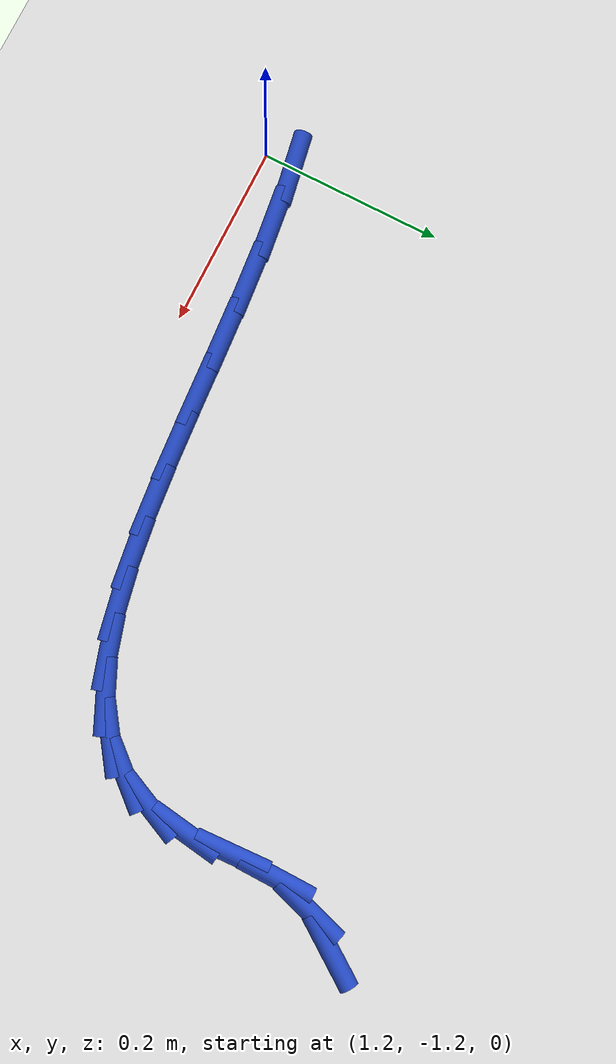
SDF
<sdf version="1.6">
 <world name="default">
  <model name="ground_plane">
   <static>1</static>
   <link name="link">
    <collision name="collision">
     <geometry><plane><normal>0 0 1</normal><size>100 100</size></plane></geometry>
     <surface><friction><ode><mu>100</mu><mu2>50</mu2></ode></friction></surface>
    </collision>
    <visual name="visual">
     <cast_shadows>0</cast_shadows>
     <geometry><plane><normal>0 0 1</normal><size>100 100</size></plane></geometry>
     <material>
      <script><uri>file://media/materials/scripts/gazebo.material</uri><name>Gazebo/WhiteGlow</name></script>
     </material>
    </visual>
   </link>
  </model>
  <model name="line">
   <link name="link_94">
    <pose>1.9036524916503461 -0.7708040634118536 0.01 0 1.57 0.959398151081952</pose>
    <collision name="collision">
     <geometry><cylinder><radius>0.01</radius><length>0.08</length></cylinder></geometry>
    </collision>
    <visual name="visual">
     <material>
      <script><name>Gazebo/Blue</name><uri>file://media/materials/scripts/gazebo.material</uri></script>
     </material>
     <geometry><cylinder><radius>0.01</radius><length>0.08</length></cylinder></geometry>
    </visual>
   </link>
   <link name="link_95">
    <pose>1.8783729610865643 -0.8068660549098605 0.01 0 1.57 1.2677172473980027</pose>
    <collision name="collision">
     <geometry><cylinder><radius>0.01</radius><length>0.08</length></cylinder></geometry>
    </collision>
    <visual name="visual">
     <material>
      <script><name>Gazebo/Blue</name><uri>file://media/materials/scripts/gazebo.material</uri></script>
     </material>
     <geometry><cylinder><radius>0.01</radius><length>0.08</length></cylinder></geometry>
    </visual>
   </link>
   <link name="link_96">
    <pose>1.8650022565015856 -0.8496231403719858 0.01 0 1.57 1.5566040474890273</pose>
    <collision name="collision">
     <geometry><cylinder><radius>0.01</radius><length>0.08</length></cylinder></geometry>
    </collision>
    <visual name="visual">
     <material>
      <script><name>Gazebo/Blue</name><uri>file://media/materials/scripts/gazebo.material</uri></script>
     </material>
     <geometry><cylinder><radius>0.01</radius><length>0.08</length></cylinder></geometry>
    </visual>
   </link>
   <link name="link_97">
    <pose>1.8642933805228328 -0.8995677876493414 0.01 0 1.57 -1.5256831411513931</pose>
    <collision name="collision">
     <geometry><cylinder><radius>0.01</radius><length>0.08</length></cylinder></geometry>
    </collision>
    <visual name="visual">
     <material>
      <script><name>Gazebo/Blue</name><uri>file://media/materials/scripts/gazebo.material</uri></script>
     </material>
     <geometry><cylinder><radius>0.01</radius><length>0.08</length></cylinder></geometry>
    </visual>
   </link>
   <link name="link_98">
    <pose>1.8665848136001235 -0.9503263037203932 0.01 0 1.57 1.4243070970409963</pose>
    <collision name="collision">
     <geometry><cylinder><radius>0.01</radius><length>0.08</length></cylinder></geometry>
    </collision>
    <visual name="visual">
     <material>
      <script><name>Gazebo/Blue</name><uri>file://media/materials/scripts/gazebo.material</uri></script>
     </material>
     <geometry><cylinder><radius>0.01</radius><length>0.08</length></cylinder></geometry>
    </visual>
   </link>
   <link name="link_99">
    <pose>1.860114745815533 -0.9941774513572158 0.01 0 1.57 1.1431936047824425</pose>
    <collision name="collision">
     <geometry><cylinder><radius>0.01</radius><length>0.08</length></cylinder></geometry>
    </collision>
    <visual name="visual">
     <material>
      <script><name>Gazebo/Blue</name><uri>file://media/materials/scripts/gazebo.material</uri></script>
     </material>
     <geometry><cylinder><radius>0.01</radius><length>0.08</length></cylinder></geometry>
    </visual>
   </link>
   <link name="link_100">
    <pose>1.843593440874991 -1.0304304292501316 0.01 0 1.57 0.8548396531226861</pose>
    <collision name="collision">
     <geometry><cylinder><radius>0.01</radius><length>0.08</length></cylinder></geometry>
    </collision>
    <visual name="visual">
     <material>
      <script><name>Gazebo/Blue</name><uri>file://media/materials/scripts/gazebo.material</uri></script>
     </material>
     <geometry><cylinder><radius>0.01</radius><length>0.08</length></cylinder></geometry>
    </visual>
   </link>
   <link name="link_101">
    <pose>1.8179630386869587 -1.0598927107054599 0.01 0 1.57 0.607160705408578</pose>
    <collision name="collision">
     <geometry><cylinder><radius>0.01</radius><length>0.08</length></cylinder></geometry>
    </collision>
    <visual name="visual">
     <material>
      <script><name>Gazebo/Blue</name><uri>file://media/materials/scripts/gazebo.material</uri></script>
     </material>
     <geometry><cylinder><radius>0.01</radius><length>0.08</length></cylinder></geometry>
    </visual>
   </link>
   <link name="link_102">
    <pose>1.7841656791598959 -1.0833717690295224 0.01 0 1.57 0.41967335676441436</pose>
    <collision name="collision">
     <geometry><cylinder><radius>0.01</radius><length>0.08</length></cylinder></geometry>
    </collision>
    <visual name="visual">
     <material>
      <script><name>Gazebo/Blue</name><uri>file://media/materials/scripts/gazebo.material</uri></script>
     </material>
     <geometry><cylinder><radius>0.01</radius><length>0.08</length></cylinder></geometry>
    </visual>
   </link>
   <link name="link_103">
    <pose>1.7431435022022643 -1.1016750775286386 0.01 0 1.57 0.28647630637574495</pose>
    <collision name="collision">
     <geometry><cylinder><radius>0.01</radius><length>0.08</length></cylinder></geometry>
    </collision>
    <visual name="visual">
     <material>
      <script><name>Gazebo/Blue</name><uri>file://media/materials/scripts/gazebo.material</uri></script>
     </material>
     <geometry><cylinder><radius>0.01</radius><length>0.08</length></cylinder></geometry>
    </visual>
   </link>
   <link name="link_104">
    <pose>1.6958386477225253 -1.1156101095091289 0.01 0 1.57 0.19456572497998023</pose>
    <collision name="collision">
     <geometry><cylinder><radius>0.01</radius><length>0.08</length></cylinder></geometry>
    </collision>
    <visual name="visual">
     <material>
      <script><name>Gazebo/Blue</name><uri>file://media/materials/scripts/gazebo.material</uri></script>
     </material>
     <geometry><cylinder><radius>0.01</radius><length>0.08</length></cylinder></geometry>
    </visual>
   </link>
   <link name="link_105">
    <pose>1.643193255629138 -1.1259843382773138 0.01 0 1.57 0.132810923366068</pose>
    <collision name="collision">
     <geometry><cylinder><radius>0.01</radius><length>0.08</length></cylinder></geometry>
    </collision>
    <visual name="visual">
     <material>
      <script><name>Gazebo/Blue</name><uri>file://media/materials/scripts/gazebo.material</uri></script>
     </material>
     <geometry><cylinder><radius>0.01</radius><length>0.08</length></cylinder></geometry>
    </visual>
   </link>
   <link name="link_106">
    <pose>1.5861494658305648 -1.1336052371395136 0.01 0 1.57 0.09352860309105425</pose>
    <collision name="collision">
     <geometry><cylinder><radius>0.01</radius><length>0.08</length></cylinder></geometry>
    </collision>
    <visual name="visual">
     <material>
      <script><name>Gazebo/Blue</name><uri>file://media/materials/scripts/gazebo.material</uri></script>
     </material>
     <geometry><cylinder><radius>0.01</radius><length>0.08</length></cylinder></geometry>
    </visual>
   </link>
   <link name="link_107">
    <pose>1.5256494182352656 -1.1392802794020491 0.01 0 1.57 0.07187027108714535</pose>
    <collision name="collision">
     <geometry><cylinder><radius>0.01</radius><length>0.08</length></cylinder></geometry>
    </collision>
    <visual name="visual">
     <material>
      <script><name>Gazebo/Blue</name><uri>file://media/materials/scripts/gazebo.material</uri></script>
     </material>
     <geometry><cylinder><radius>0.01</radius><length>0.08</length></cylinder></geometry>
    </visual>
   </link>
   <link name="link_108">
    <pose>1.462635252751701 -1.1438169383712404 0.01 0 1.57 0.06502663162931029</pose>
    <collision name="collision">
     <geometry><cylinder><radius>0.01</radius><length>0.08</length></cylinder></geometry>
    </collision>
    <visual name="visual">
     <material>
      <script><name>Gazebo/Blue</name><uri>file://media/materials/scripts/gazebo.material</uri></script>
     </material>
     <geometry><cylinder><radius>0.01</radius><length>0.08</length></cylinder></geometry>
    </visual>
   </link>
   <link name="link_109">
    <pose>1.3980491092883334 -1.1480226873534072 0.01 0 1.57 0.07167402079669001</pose>
    <collision name="collision">
     <geometry><cylinder><radius>0.01</radius><length>0.08</length></cylinder></geometry>
    </collision>
    <visual name="visual">
     <material>
      <script><name>Gazebo/Blue</name><uri>file://media/materials/scripts/gazebo.material</uri></script>
     </material>
     <geometry><cylinder><radius>0.01</radius><length>0.08</length></cylinder></geometry>
    </visual>
   </link>
   <link name="link_110">
    <pose>1.332833127753622 -1.1527049996548708 0.01 0 1.57 0.09166857086395103</pose>
    <collision name="collision">
     <geometry><cylinder><radius>0.01</radius><length>0.08</length></cylinder></geometry>
    </collision>
    <visual name="visual">
     <material>
      <script><name>Gazebo/Blue</name><uri>file://media/materials/scripts/gazebo.material</uri></script>
     </material>
     <geometry><cylinder><radius>0.01</radius><length>0.08</length></cylinder></geometry>
    </visual>
   </link>
   <link name="link_111">
    <pose>1.267929448056028 -1.158671348581951 0.01 0 1.57 0.1259279853185562</pose>
    <collision name="collision">
     <geometry><cylinder><radius>0.01</radius><length>0.08</length></cylinder></geometry>
    </collision>
    <visual name="visual">
     <material>
      <script><name>Gazebo/Blue</name><uri>file://media/materials/scripts/gazebo.material</uri></script>
     </material>
     <geometry><cylinder><radius>0.01</radius><length>0.08</length></cylinder></geometry>
    </visual>
   </link>
   <link name="link_112">
    <pose>1.2042802101040138 -1.1667292074409685 0.01 0 1.57 0.17644317667961046</pose>
    <collision name="collision">
     <geometry><cylinder><radius>0.01</radius><length>0.08</length></cylinder></geometry>
    </collision>
    <visual name="visual">
     <material>
      <script><name>Gazebo/Blue</name><uri>file://media/materials/scripts/gazebo.material</uri></script>
     </material>
     <geometry><cylinder><radius>0.01</radius><length>0.08</length></cylinder></geometry>
    </visual>
   </link>
  </model>
 </world>
</sdf>
